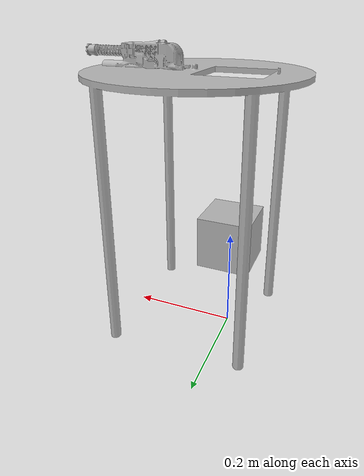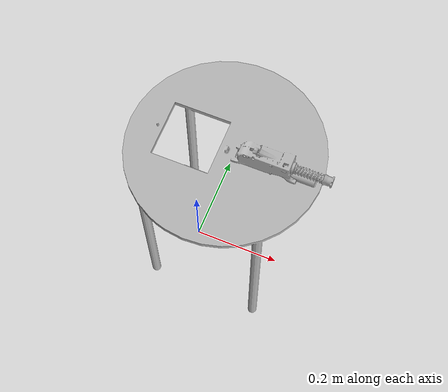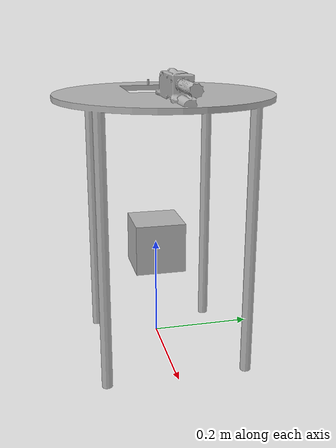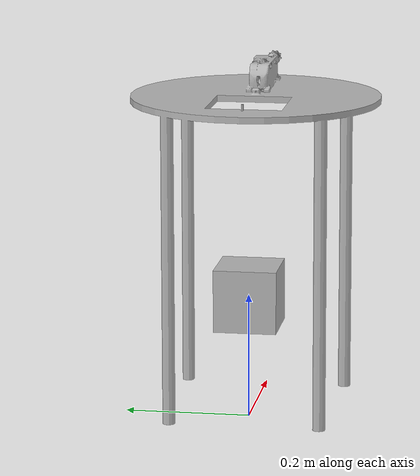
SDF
<sdf version='1.5'>
    <model name='plate'>
        <link name='plate'>
            <pose frame=''>0 0 0 0 -0 0</pose>
            <inertial>
                <pose frame=''>0.0751723 -4.02734e-06 0.412435 0 -0 0</pose>
                <mass>13.4708</mass>
                <inertia>
                    <ixx>0.480204</ixx>
                    <ixy>-3.06614e-06</ixy>
                    <ixz>0.0113382</ixz>
                    <iyy>0.472612</iyy>
                    <iyz>-6.11694e-06</iyz>
                    <izz>0.341787</izz>
                </inertia>
            </inertial>
            <collision name='plate_collision'>
                <pose frame=''>0 0 0 0 -0 0</pose>
                <geometry>
                    <mesh>
                        <scale>1 1 1</scale>
                        <uri>model://plate/cad/plate.STL</uri>
                    </mesh>
                </geometry>
            </collision>
            <visual name='plate_visual'>
                <pose frame=''>0 0 0 0 -0 0</pose>
                <geometry>
                    <mesh>
                        <scale>1 1 1</scale>
                        <uri>model://plate/cad/plate.STL</uri>
                    </mesh>
                </geometry>
            </visual>
        </link>

        <link name='weight'>
            <gravity>1</gravity>
            <pose>0 0 0.2 0 0 0</pose>
            <inertial>
                <mass>2.5</mass>
                <pose frame=''>0 0 0 0 0 0</pose>
                <inertia>
                    <ixx>1</ixx>
                    <ixy>0</ixy>
                    <ixz>0</ixz>
                    <iyy>1</iyy>
                    <iyz>0</iyz>
                    <izz>1</izz>
                </inertia>
            </inertial>
            <collision name='collision'>
                <geometry>
                    <box>
                        <size>.1 .1 .1</size>
                    </box>
                </geometry>
            </collision>
            <visual name='visual'>
                <geometry>
                    <box>
                        <size>.1 .1 .1</size>
                    </box>
                </geometry>
            </visual>
        </link>

        <joint name="fixtoworld" type="revolute">
            <pose>0 0 0 0 0 0</pose>
            <child>plate</child>
            <parent>world</parent>
            <axis>
                <limit>
                    <lower>0</lower>
                    <upper>0</upper>
                </limit>
                <xyz>0 0 1</xyz>
            </axis>
        </joint>

        <joint name="motor0" type="prismatic">
            <pose>0 0 0 0 0 0</pose>
            <child>weight</child>
            <parent>plate</parent>
            <axis>
                <limit>
                    <lower>-1000</lower>
                    <upper>1000</upper>
                </limit>
                <xyz>0 0 1</xyz>
            </axis>
        </joint>

        <plugin name="roboySim" filename="libroboySim.so">
            <myoMuscle name="myoMuscle">
                <link name="plate">
                    <viaPoint>0.072 0 0.513</viaPoint>
                    <viaPoint>0.060 0 0.510</viaPoint>
                </link>
                <link name="weight">
                    <viaPoint>0.0 0.0 0.05</viaPoint>
                </link>
                <motor>
                    <bemf_constant>0.001488</bemf_constant> <!--V/rpm-->
                    <torque_constant>14.2</torque_constant> <!--mNm/A-->
                    <inductance>0.118</inductance> <!--mH-->
                    <resistance>0.797</resistance> <!--Ohm-->
                    <inertiaMoment>4.09</inertiaMoment> <!--gcm^2-->
                </motor>
                <gear>
                    <ratio>53</ratio>
                    <efficiency>0.59</efficiency>
                    <inertiaMoment>0.4</inertiaMoment> <!--gcm^2-->
                </gear>
                <spindle>
                    <radius>0.005</radius>
                </spindle>
                <SEE>
                    <stiffness>1.0</stiffness>
                    <length>0.1</length>
                </SEE>
            </myoMuscle>
        </plugin>
    </model>
</sdf>
